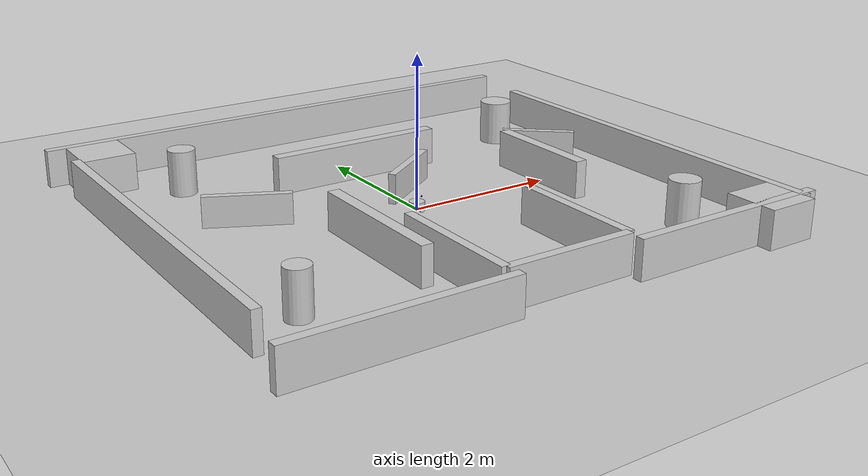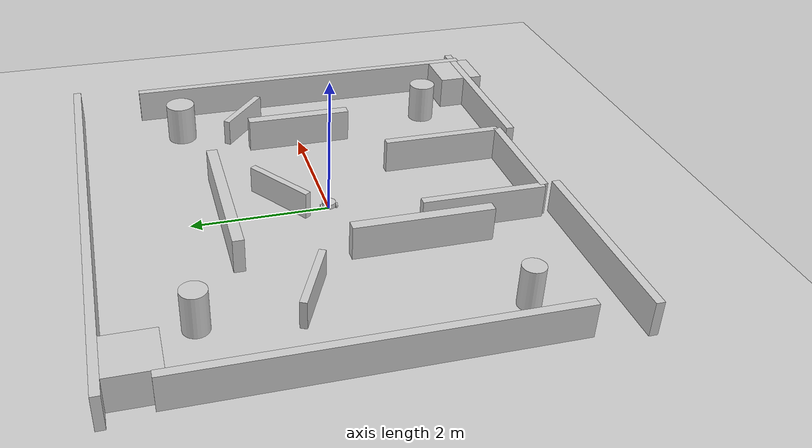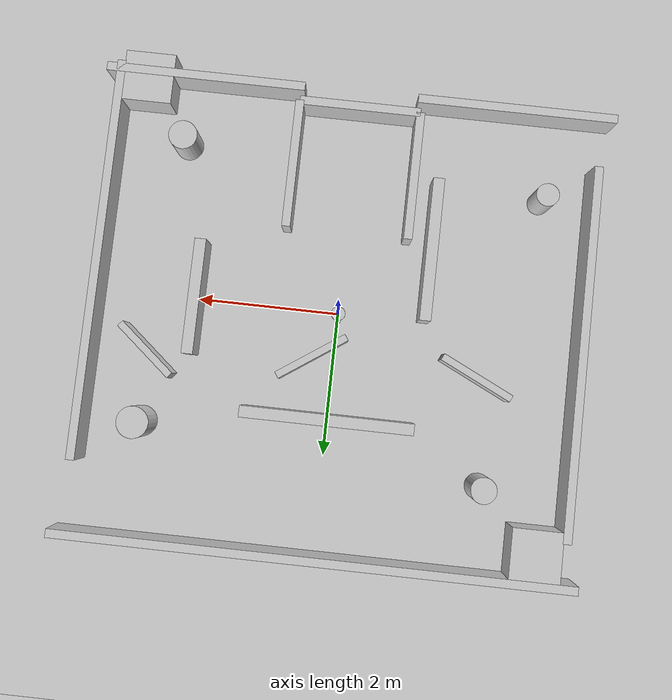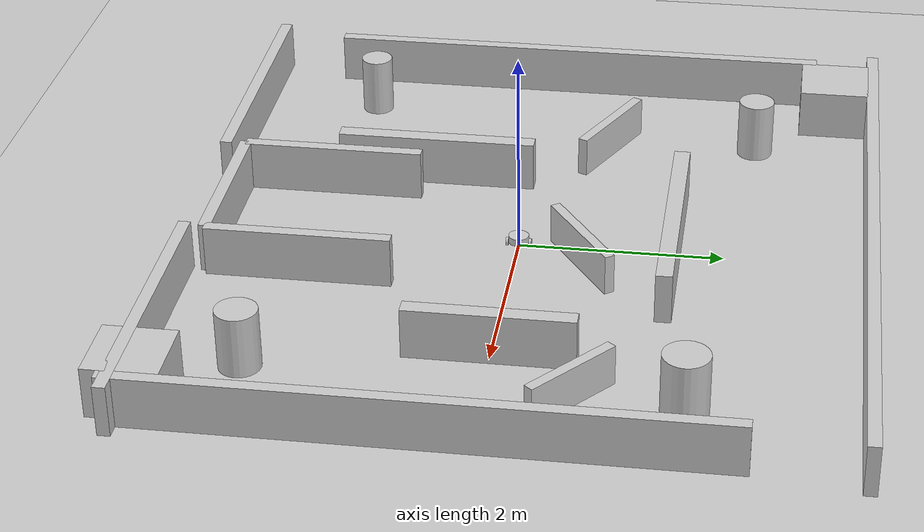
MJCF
<mujoco model="myrobot_diff_3d_lidar">
  <compiler angle="radian" coordinate="local"/>
  <option timestep="0.005" gravity="0 0 -9.81" integrator="RK4"/>
  <default>
    <geom friction="1.0 0.01 0.001" contype="0" conaffinity="0" rgba="0.8 0.8 0.8 1"/>
    <joint damping="0.1"/>
  </default>
  <asset>
    <material name="yellow" rgba="1 0.55 0 1"/>
    <material name="black" rgba="0.02 0.02 0.02 1"/>
    <material name="gray" rgba="0.55 0.55 0.55 1"/>
    <material name="red" rgba="0.8 0.1 0.1 1"/>
    <material name="blue" rgba="0.1 0.25 0.85 1"/>
    <material name="green" rgba="0.1 0.55 0.25 1"/>
    <material name="orange" rgba="0.9 0.35 0.05 1"/>
  </asset>
  <worldbody>
    <light pos="0 0 3" dir="0 0 -1" diffuse="0.8 0.8 0.8"/>
    <geom name="floor" type="plane" size="8 8 0.1" material="gray" contype="1" conaffinity="1"/>
    <body name="base" pos="0 0 0.08">
      <freejoint name="base_free_joint"/>
      <geom name="base_geom" type="cylinder" size="0.10 0.035" material="yellow" mass="1.0"/>
      <site name="laser3d_site" pos="0.07 0 0.085" size="0.01" rgba="0 0 1 1"/>
      <site name="imu_site" pos="0 0 0.045" size="0.01" rgba="0 1 0 1"/>
      <body name="left_wheel" pos="0 0.1125 -0.04" euler="1.57079632679 0 0">
        <joint name="left_wheel_joint" type="hinge" axis="0 0 1"/>
        <geom name="left_wheel_geom" type="cylinder" size="0.04 0.0125" material="black" mass="0.2"/>
      </body>
      <body name="right_wheel" pos="0 -0.1125 -0.04" euler="1.57079632679 0 0">
        <joint name="right_wheel_joint" type="hinge" axis="0 0 1"/>
        <geom name="right_wheel_geom" type="cylinder" size="0.04 0.0125" material="black" mass="0.2"/>
      </body>
    </body>
    <geom name="box_front" type="box" pos="2.0 0.0 0.25" size="0.08 0.8 0.25" material="red" contype="1" conaffinity="1"/>
    <geom name="box_left" type="box" pos="0.0 1.5 0.25" size="1.2 0.08 0.25" material="red" contype="1" conaffinity="1"/>
    <geom name="box_right" type="box" pos="-1.2 -1.0 0.25" size="0.08 1.0 0.25" material="red" contype="1" conaffinity="1"/>
    <geom name="wall_north" type="box" pos="0.0 3.4 0.25" size="3.6 0.06 0.25" material="blue" contype="1" conaffinity="1"/>
    <geom name="wall_south_left" type="box" pos="-2.2 -3.1 0.25" size="1.4 0.06 0.25" material="blue" contype="1" conaffinity="1"/>
    <geom name="wall_south_right" type="box" pos="2.2 -3.1 0.25" size="1.4 0.06 0.25" material="blue" contype="1" conaffinity="1"/>
    <geom name="wall_west" type="box" pos="-3.4 0.2 0.25" size="0.06 2.6 0.25" material="blue" contype="1" conaffinity="1"/>
    <geom name="wall_east" type="box" pos="3.4 -0.4 0.25" size="0.06 2.8 0.25" material="blue" contype="1" conaffinity="1"/>
    <geom name="corridor_left" type="box" pos="-0.85 -2.0 0.25" size="0.06 0.9 0.25" material="green" contype="1" conaffinity="1"/>
    <geom name="corridor_right" type="box" pos="0.85 -2.0 0.25" size="0.06 0.9 0.25" material="green" contype="1" conaffinity="1"/>
    <geom name="corridor_end" type="box" pos="0.0 -2.9 0.25" size="0.85 0.06 0.25" material="green" contype="1" conaffinity="1"/>
    <geom name="pillar_northwest" type="cylinder" pos="-2.2 2.2 0.3" size="0.18 0.3" material="orange" contype="1" conaffinity="1"/>
    <geom name="pillar_northeast" type="cylinder" pos="2.6 1.8 0.3" size="0.22 0.3" material="orange" contype="1" conaffinity="1"/>
    <geom name="pillar_southwest" type="cylinder" pos="-2.7 -1.9 0.3" size="0.16 0.3" material="orange" contype="1" conaffinity="1"/>
    <geom name="pillar_southeast" type="cylinder" pos="2.4 -2.2 0.3" size="0.2 0.3" material="orange" contype="1" conaffinity="1"/>
    <geom name="short_barrier_center" type="box" pos="0.3 0.65 0.2" size="0.55 0.05 0.2" euler="0 0 0.6" material="green" contype="1" conaffinity="1"/>
    <geom name="short_barrier_west" type="box" pos="-2.0 0.7 0.2" size="0.55 0.05 0.2" euler="0 0 -0.45" material="green" contype="1" conaffinity="1"/>
    <geom name="short_barrier_east" type="box" pos="2.6 0.8 0.2" size="0.5 0.05 0.2" euler="0 0 -0.7" material="green" contype="1" conaffinity="1"/>
    <geom name="corner_block_nw" type="box" pos="-3.0 3.0 0.25" size="0.35 0.35 0.25" material="red" contype="1" conaffinity="1"/>
    <geom name="corner_block_se" type="box" pos="3.0 -3.0 0.25" size="0.35 0.35 0.25" material="red" contype="1" conaffinity="1"/>
  </worldbody>
  <actuator>
    <velocity name="left_wheel_velocity" joint="left_wheel_joint" kv="10" ctrlrange="-30 30"/>
    <velocity name="right_wheel_velocity" joint="right_wheel_joint" kv="10" ctrlrange="-30 30"/>
  </actuator>

  <sensor>
    <framequat name="imu_quat" objtype="site" objname="imu_site"/>
    <gyro name="imu_gyro" site="imu_site"/>
    <accelerometer name="imu_accel" site="imu_site"/>
  </sensor>
</mujoco>
